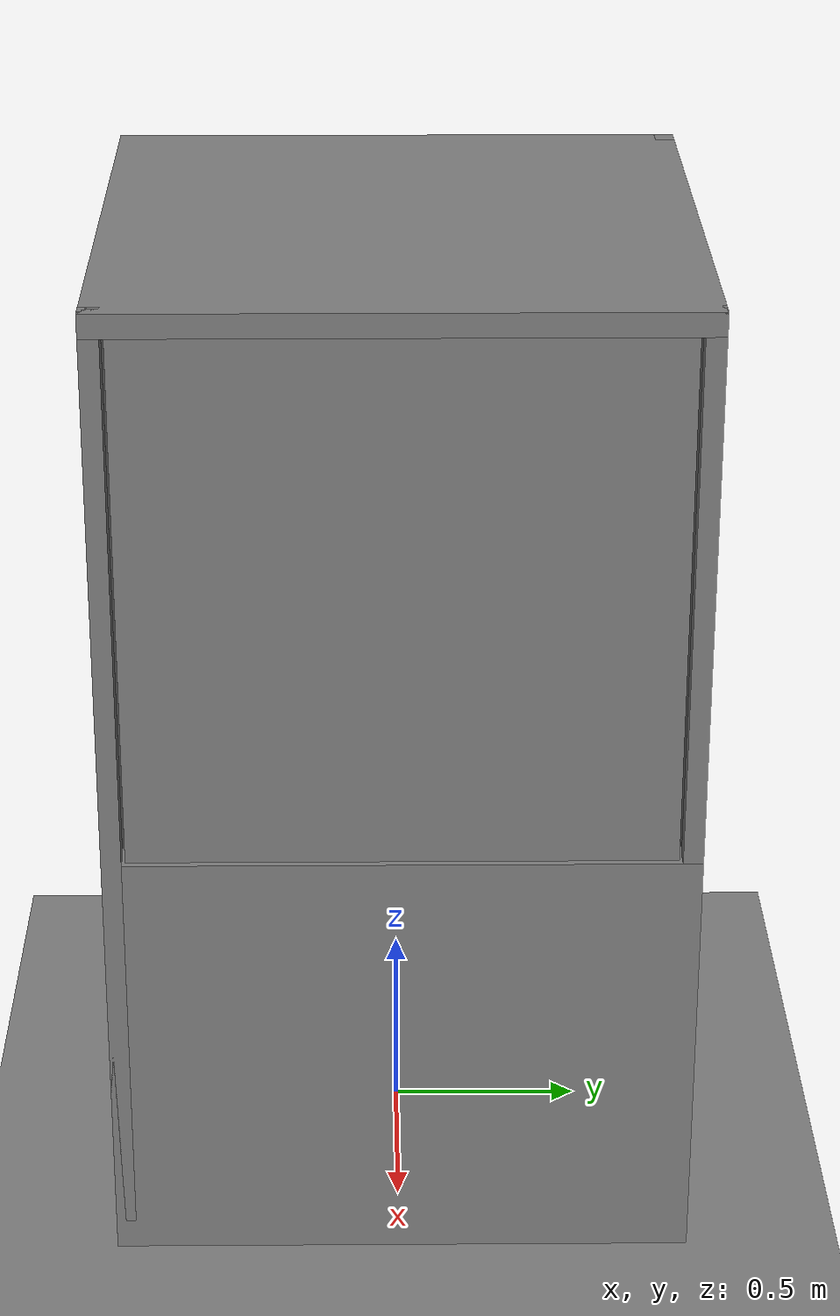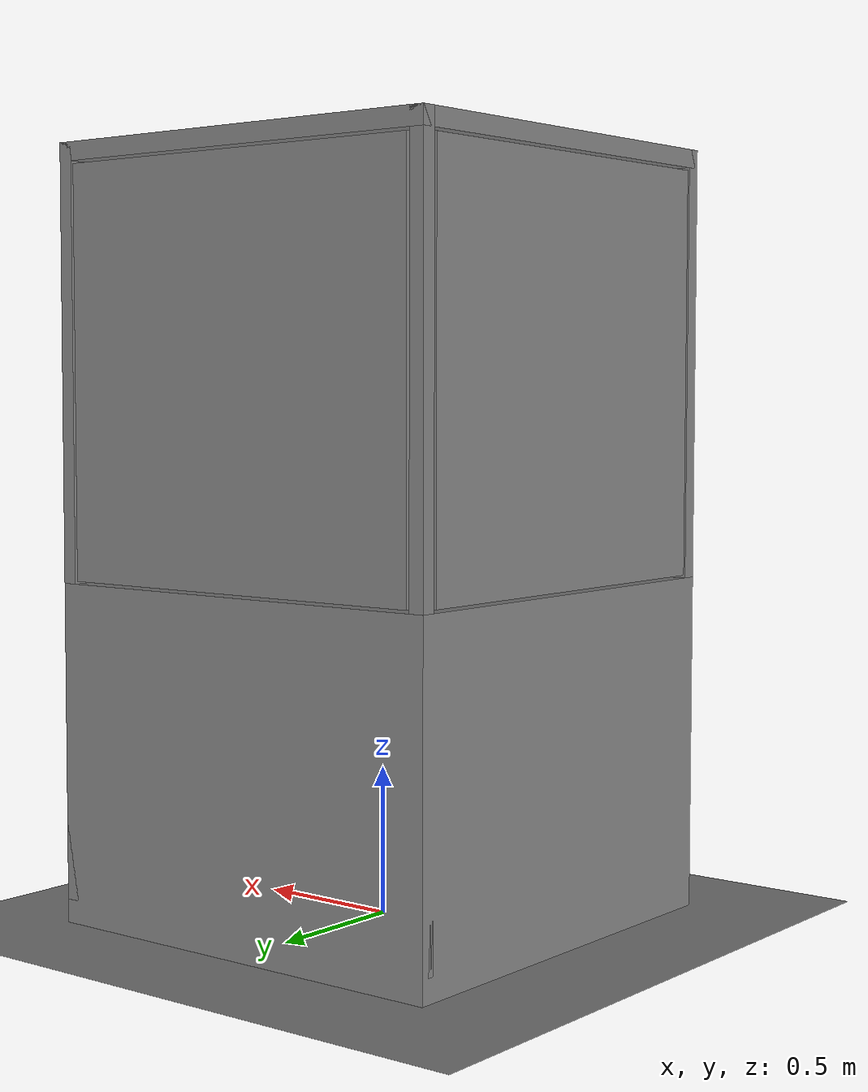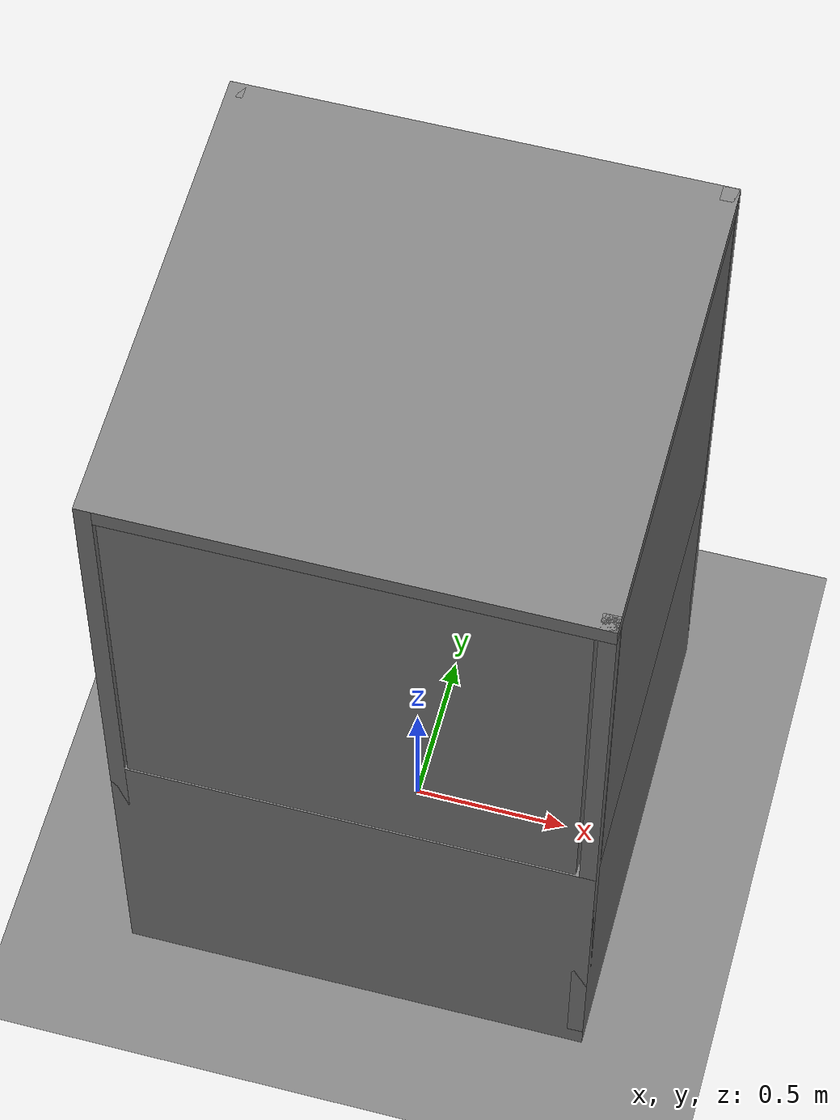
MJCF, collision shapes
<mujoco model="aic_world">
  <compiler angle="radian"/>

  <option gravity="0 0 -9.8" magnetic="5.5645e-06 2.28758e-05 -4.23884e-05"/>

  <visual>
    <headlight ambient="0 0 0" diffuse="0 0 0" specular="0 0 0"/>
  </visual>

  <default>
    <default class="world_default"/>
    <default class="cable_default">
      <joint damping="0.2"/>
    </default>
    <default class="sc_port_default">
      <geom friction="0.5 0.5"/>
    </default>
    <default class="nic_card_default">
      <geom friction="0.1 0.005 0.1"/>
    </default>
  </default>

  <extension>
    <plugin plugin="mujoco.elasticity.cable">
      <instance name="composite">
        <config key="twist" value="1e2"/>
        <config key="bend" value="4e1"/>
      </instance>
    </plugin>
  </extension>

  <asset>
    <texture type="2d" colorspace="linear" name="texture_8f0186e86ccda8a0971804b92cdad95564f7797822ed4e98eb905611a9653b33_floor_visual_Plane" file="8f0186e86ccda8a0971804b92cdad95564f7797822ed4e98eb905611a9653b33_floor_visual_b3a94635-54d6beff6424435d3828cb4c8a1278d9ea3964b0.png"/>
    <texture type="2d" colorspace="linear" name="texture_f6f0c5403646eaf005b17bf1932ba8f603568238a7d114e0e1bc4a4e145a50b8_sc_plug_visual_merged_0" file="f6f0c5403646eaf005b17bf1932ba8f603568238a7d114e0e1bc4a4e145a50b8_sc_plug_visual_5875f865-48f62b2f4840d852c7f39a01e6c183037dc1485b.png"/>
    <texture type="2d" colorspace="linear" name="texture_45081d4d6958c247f16088da85c40468642229c5d721531f9479bf28cde4b7ef_lc_plug_visual_merged_0" file="45081d4d6958c247f16088da85c40468642229c5d721531f9479bf28cde4b7ef_lc_plug_visual_03dabf32-0905e8a8aa368516e682f6ec84258100cdb4efef.png"/>
    <texture type="2d" colorspace="linear" name="texture_d4242c13bbd8250369ffe37581ab16c59b800de33e7811b05a80c210be9e8c9e_sfp_module_visual_Body.005" file="d4242c13bbd8250369ffe37581ab16c59b800de33e7811b05a80c210be9e8c9e_sfp_module_visual_8fc63b58-7471eafc55dcb668ae68adfe70a147b363ba3be9.png"/>
    <texture type="2d" colorspace="linear" name="texture_d4242c13bbd8250369ffe37581ab16c59b800de33e7811b05a80c210be9e8c9e_sfp_module_visual_Body.005_1" file="d4242c13bbd8250369ffe37581ab16c59b800de33e7811b05a80c210be9e8c9e_sfp_module_visual_1f09e86a-a4dc4a72bd6e778067310898a5c179607fd78966.png"/>
    <material name="material_d88de9d642ef2c0d3da51b0334e0062fd64c827416949a55eee77364fb471186_enclosure_visual_V1014952.001" class="world_default" shininess="30" rgba="0.290196 0.290196 0.290196 1"/>
    <material name="material_d88de9d642ef2c0d3da51b0334e0062fd64c827416949a55eee77364fb471186_enclosure_visual_V1014952.001_1" class="world_default" shininess="30" rgba="0.129412 0.129412 0.133333 1"/>
    <material name="material_d88de9d642ef2c0d3da51b0334e0062fd64c827416949a55eee77364fb471186_light_visual_Plane.001" class="world_default" shininess="30" rgba="0.5 0.5 0.5 1"/>
    <material name="material_8f0186e86ccda8a0971804b92cdad95564f7797822ed4e98eb905611a9653b33_floor_visual_Plane" class="world_default" texture="texture_8f0186e86ccda8a0971804b92cdad95564f7797822ed4e98eb905611a9653b33_floor_visual_Plane" shininess="30" rgba="0.5 0.5 0.5 1"/>
    <material name="material_8f0186e86ccda8a0971804b92cdad95564f7797822ed4e98eb905611a9653b33_walls_visual_Curve.001" class="world_default" shininess="30" rgba="0.0196078 0.0196078 0.0196078 1"/>
    <material name="material_8f0186e86ccda8a0971804b92cdad95564f7797822ed4e98eb905611a9653b33_walls_visual_merged_1" class="world_default" shininess="30" rgba="0.262745 0.262745 0.262745 1"/>
    <material name="material_8f0186e86ccda8a0971804b92cdad95564f7797822ed4e98eb905611a9653b33_walls_visual_Plane.003_1" class="world_default" shininess="30" rgba="0.8 0.8 0.8 1"/>
    <material name="material_8f0186e86ccda8a0971804b92cdad95564f7797822ed4e98eb905611a9653b33_walls_visual_Plane.002" class="world_default" shininess="30" rgba="0.207843 0.207843 0.207843 1"/>
    <material name="material_f6f0c5403646eaf005b17bf1932ba8f603568238a7d114e0e1bc4a4e145a50b8_sc_plug_visual_merged_0" class="world_default" texture="texture_f6f0c5403646eaf005b17bf1932ba8f603568238a7d114e0e1bc4a4e145a50b8_sc_plug_visual_merged_0" shininess="30" rgba="0.5 0.5 0.5 1"/>
    <material name="material_45081d4d6958c247f16088da85c40468642229c5d721531f9479bf28cde4b7ef_lc_plug_visual_merged_0" class="world_default" texture="texture_45081d4d6958c247f16088da85c40468642229c5d721531f9479bf28cde4b7ef_lc_plug_visual_merged_0" shininess="30" rgba="0.5 0.5 0.5 1"/>
    <material name="material_d4242c13bbd8250369ffe37581ab16c59b800de33e7811b05a80c210be9e8c9e_sfp_module_visual_Body.005" class="world_default" texture="texture_d4242c13bbd8250369ffe37581ab16c59b800de33e7811b05a80c210be9e8c9e_sfp_module_visual_Body.005" shininess="30" rgba="0.5 0.5 0.5 1"/>
    <material name="material_d4242c13bbd8250369ffe37581ab16c59b800de33e7811b05a80c210be9e8c9e_sfp_module_visual_Body.005_1" class="world_default" texture="texture_d4242c13bbd8250369ffe37581ab16c59b800de33e7811b05a80c210be9e8c9e_sfp_module_visual_Body.005_1" shininess="30" rgba="0.5 0.5 0.5 1"/>
    <material name="material_0cca7f1fa4560c20e609c8186c6b51b24aceac6bd62662694d26b474c9db0ba6_base_visual_ISO_4762_-_M3_x_8.019" class="world_default" shininess="30" rgba="0.0352941 0.0352941 0.0313726 1"/>
    <material name="material_0cca7f1fa4560c20e609c8186c6b51b24aceac6bd62662694d26b474c9db0ba6_base_visual_ISO_4762_-_M3_x_8.019_1" class="world_default" shininess="30" rgba="0.0313726 0.0313726 0.0313726 1"/>
    <material name="material_0cca7f1fa4560c20e609c8186c6b51b24aceac6bd62662694d26b474c9db0ba6_base_visual_ISO_4762_-_M3_x_8.019_2" class="world_default" shininess="30" rgba="0.215686 0 0.215686 1"/>
    <mesh name="d88de9d642ef2c0d3da51b0334e0062fd64c827416949a55eee77364fb471186_enclosure_visual_V1014952.001" class="world_default" content_type="model/obj" file="d88de9d642ef2c0d3da51b0334e0062fd64c827416949a55eee77364fb471186_enclosure_visual_V1014952.001-c990efe7b9dfe87aa065fd6eb3960ce051ae2aef.obj" inertia="shell"/>
    <mesh name="d88de9d642ef2c0d3da51b0334e0062fd64c827416949a55eee77364fb471186_enclosure_visual_V1014952.001_1" class="world_default" content_type="model/obj" file="d88de9d642ef2c0d3da51b0334e0062fd64c827416949a55eee77364fb471186_enclosure_visual_V1014952.001_1-807e07de06af157c84b994a232617507a7059420.obj" inertia="shell"/>
    <mesh name="d88de9d642ef2c0d3da51b0334e0062fd64c827416949a55eee77364fb471186_light_visual_Plane.001" class="world_default" content_type="model/obj" file="d88de9d642ef2c0d3da51b0334e0062fd64c827416949a55eee77364fb471186_light_visual_Plane.001-a8a774a80bc239d73769a498eae528b206eebcb0.obj" inertia="shell"/>
    <mesh name="8f0186e86ccda8a0971804b92cdad95564f7797822ed4e98eb905611a9653b33_floor_visual_Plane" class="world_default" content_type="model/obj" file="8f0186e86ccda8a0971804b92cdad95564f7797822ed4e98eb905611a9653b33_floor_visual_Plane-4dc7f6150ad7c239769a0860a01efb2015657aea.obj" inertia="shell"/>
    <mesh name="8f0186e86ccda8a0971804b92cdad95564f7797822ed4e98eb905611a9653b33_walls_visual_Curve.001" class="world_default" content_type="model/obj" file="8f0186e86ccda8a0971804b92cdad95564f7797822ed4e98eb905611a9653b33_walls_visual_Curve.001-4d7c79ac2e958832fdb15589262141ca1b80d3a5.obj" inertia="shell"/>
    <mesh name="8f0186e86ccda8a0971804b92cdad95564f7797822ed4e98eb905611a9653b33_walls_visual_merged_1" class="world_default" content_type="model/obj" file="8f0186e86ccda8a0971804b92cdad95564f7797822ed4e98eb905611a9653b33_walls_visual_merged_1-359a22140d528747936e80bedf90e1437a177a9f.obj" inertia="shell"/>
    <mesh name="8f0186e86ccda8a0971804b92cdad95564f7797822ed4e98eb905611a9653b33_walls_visual_Plane.003_1" class="world_default" content_type="model/obj" file="8f0186e86ccda8a0971804b92cdad95564f7797822ed4e98eb905611a9653b33_walls_visual_Plane.003_1-cd05ed21fa19a2784fb772d7519abf7c31c8b85f.obj" inertia="shell"/>
    <mesh name="8f0186e86ccda8a0971804b92cdad95564f7797822ed4e98eb905611a9653b33_walls_visual_Plane.002" class="world_default" content_type="model/obj" file="8f0186e86ccda8a0971804b92cdad95564f7797822ed4e98eb905611a9653b33_walls_visual_Plane.002-ee4f781765eec46c2256d941981732d4b1857f24.obj" inertia="shell"/>
    <mesh name="f6f0c5403646eaf005b17bf1932ba8f603568238a7d114e0e1bc4a4e145a50b8_sc_plug_visual_merged_0" class="world_default" content_type="model/obj" file="f6f0c5403646eaf005b17bf1932ba8f603568238a7d114e0e1bc4a4e145a50b8_sc_plug_visual_merged_0-67f94accf247f722dd4954d7448d7956402901f2.obj" inertia="shell"/>
    <mesh name="45081d4d6958c247f16088da85c40468642229c5d721531f9479bf28cde4b7ef_lc_plug_visual_merged_0" class="world_default" content_type="model/obj" file="45081d4d6958c247f16088da85c40468642229c5d721531f9479bf28cde4b7ef_lc_plug_visual_merged_0-fdaf59710fc3cc118a7df05add4ff4205edda4ef.obj" inertia="shell"/>
    <mesh name="d4242c13bbd8250369ffe37581ab16c59b800de33e7811b05a80c210be9e8c9e_sfp_module_visual_Body.005" class="world_default" content_type="model/obj" file="d4242c13bbd8250369ffe37581ab16c59b800de33e7811b05a80c210be9e8c9e_sfp_module_visual_Body.005-f93147e1e403de321fb70c06a4b1e00f20feb9fd.obj" inertia="shell"/>
    <mesh name="d4242c13bbd8250369ffe37581ab16c59b800de33e7811b05a80c210be9e8c9e_sfp_module_visual_Body.005_1" class="world_default" content_type="model/obj" file="d4242c13bbd8250369ffe37581ab16c59b800de33e7811b05a80c210be9e8c9e_sfp_module_visual_Body.005_1-4af964a95522e2593eb6381eca4f09ef239782c7.obj" inertia="shell"/>
    <mesh name="0cca7f1fa4560c20e609c8186c6b51b24aceac6bd62662694d26b474c9db0ba6_base_visual_ISO_4762_-_M3_x_8.019" class="world_default" content_type="model/obj" file="0cca7f1fa4560c20e609c8186c6b51b24aceac6bd62662694d26b474c9db0ba6_base_visual_ISO_4762_-_M3_x_8.019-f814bb518c42769543ab6246809f3fe4af5c2b64.obj" inertia="shell"/>
    <mesh name="0cca7f1fa4560c20e609c8186c6b51b24aceac6bd62662694d26b474c9db0ba6_base_visual_ISO_4762_-_M3_x_8.019_1" class="world_default" content_type="model/obj" file="0cca7f1fa4560c20e609c8186c6b51b24aceac6bd62662694d26b474c9db0ba6_base_visual_ISO_4762_-_M3_x_8.019_1-0b276ba9910a7642121235b62d2afc47c3995782.obj" inertia="shell"/>
    <mesh name="0cca7f1fa4560c20e609c8186c6b51b24aceac6bd62662694d26b474c9db0ba6_base_visual_ISO_4762_-_M3_x_8.019_2" class="world_default" content_type="model/obj" file="0cca7f1fa4560c20e609c8186c6b51b24aceac6bd62662694d26b474c9db0ba6_base_visual_ISO_4762_-_M3_x_8.019_2-7b96569be9572803417c5650ee83c9c883b44191.obj" inertia="shell"/>
    <!-- NIC Card Mount 0 assets -->
    <mesh name="nic_mount_visual_screw" file="0b8064b3d55c0a91b201a887d333757ce524ac7750c86fbe62130d9052f34958_nic_card_mount_visual_ISO_4762_-_M2_x_8.054-865f98896565b646973302f5cc3bb20e1474682a.obj" inertia="shell"/>
    <material name="mat_nic_mount_screw" specular="0.5" shininess="30" rgba="0.035 0.035 0.031 1"/>
    <mesh name="nic_mount_visual_screw_1" file="0b8064b3d55c0a91b201a887d333757ce524ac7750c86fbe62130d9052f34958_nic_card_mount_visual_ISO_4762_-_M2_x_8.054_1-5adcf23490bd5794ededbd17ac1064f40ca2f1d8.obj" inertia="shell"/>
    <material name="mat_nic_mount_screw_1" specular="0.5" shininess="30" rgba="0.031 0.031 0.031 1"/>
    <mesh name="nic_card_visual_0" file="0b8064b3d55c0a91b201a887d333757ce524ac7750c86fbe62130d9052f34958_nic_card_visual_merged_0-b45f6200bfaa68e87732b114c99af8b477e66413.obj" inertia="shell"/>
    <texture name="tex_nic_card_0" type="2d" file="0b8064b3d55c0a91b201a887d333757ce524ac7750c86fbe62130d9052f34958_nic_card_visual_45ced356-decb3c11fd49e8be2155fa2b1c64d354b4b1809a.png"/>
    <material name="mat_nic_card_0" texture="tex_nic_card_0" specular="0.5" shininess="30"/>
    <mesh name="nic_card_visual_1" file="0b8064b3d55c0a91b201a887d333757ce524ac7750c86fbe62130d9052f34958_nic_card_visual_merged_1-0e349b7b61b9f4e172feb5320f1e8146f966f938.obj" inertia="shell"/>
    <texture name="tex_nic_card_1" type="2d" file="0b8064b3d55c0a91b201a887d333757ce524ac7750c86fbe62130d9052f34958_nic_card_visual_39dce63a-b1ab28e3f7e42255c5bb13a337e50008ebdbcb02.png"/>
    <material name="mat_nic_card_1" texture="tex_nic_card_1" specular="0.5" shininess="30"/>
    <mesh name="nic_card_visual_pcb" file="0b8064b3d55c0a91b201a887d333757ce524ac7750c86fbe62130d9052f34958_nic_card_visual_Plane.029-3e628f059a97b4e803370a2b5e0abfcfac063972.obj" inertia="shell"/>
    <material name="mat_nic_card_pcb" specular="0.5" shininess="30" rgba="0.023 0.039 0.012 1"/>
    <mesh name="nic_card_visual_conn" file="0b8064b3d55c0a91b201a887d333757ce524ac7750c86fbe62130d9052f34958_nic_card_visual_Cube.007-f8fbe4a2582482ceb99cb3e87bdf6d5a3daf05ec.obj" inertia="shell"/>
    <material name="mat_nic_card_conn" specular="0.5" shininess="30" rgba="0 0 0 1"/>
  </asset>

  <worldbody>
    <light name="enclosure_light" class="world_default" pos="0 0 2.5" dir="0 0 -1" intensity="0.4" range="2" attenuation="1 0.01 0.001" cutoff="114.592" exponent="0.993023" diffuse="1 1 1" specular="0.1 0.1 0.1"/>
    <light name="ceiling_01" class="world_default" pos="2 2 6" dir="0 0 -1" intensity="2" range="9" castshadow="false" attenuation="1 0.01 0.001" cutoff="360" diffuse="1 1 1" specular="0.1 0.1 0.1"/>
    <light name="ceiling_02" class="world_default" pos="-2 -2 6" dir="0 0 -1" intensity="2" range="9" castshadow="false" attenuation="1 0.01 0.001" cutoff="360" diffuse="1 1 1" specular="0.1 0.1 0.1"/>
    <body name="enclosure_link">
      <inertial pos="0 0 0" mass="1" diaginertia="1 1 1"/>
      <geom name="v1015026001_collider_box" class="world_default" size="0.75 0.569492 0.75" pos="-0.010998 0.009283 0.569706" quat="1.22475e-07 -1.22474e-07 0.707107 0.707107" type="box" group="3"/>
      <geom name="v1015028001_collider_box" class="world_default" size="0.0254 0.0254 1.25" pos="0.713602 0.733883 1.3292" quat="1.73205e-07 0 0 -1" type="box" group="3"/>
      <geom name="v1015013001_collider_box" class="world_default" size="0.0304 0.75 0.75" pos="-0.010998 0.009283 2.5488" quat="0.707107 0 -0.707107 0" type="box" group="3"/>
      <geom name="v1015027_collider_box" class="world_default" size="0.0254 0.0254 1.25" pos="-0.735598 0.733883 1.3292" quat="1.73205e-07 0 0 -1" type="box" group="3"/>
      <geom name="v1015029_collider_box" class="world_default" size="0.0254 0.0254 1.25" pos="-0.735598 -0.715317 1.3292" quat="0 1.73205e-07 -1 -1.73205e-07" type="box" group="3"/>
      <geom name="v1015030_collider_box" class="world_default" size="0.0254 0.0254 1.25" pos="0.713602 -0.715317 1.3292" quat="1.73205e-07 0 0 -1" type="box" group="3"/>
      <geom name="enclosure_visual" class="world_default" type="mesh" contype="0" conaffinity="0" material="material_d88de9d642ef2c0d3da51b0334e0062fd64c827416949a55eee77364fb471186_enclosure_visual_V1014952.001" mesh="d88de9d642ef2c0d3da51b0334e0062fd64c827416949a55eee77364fb471186_enclosure_visual_V1014952.001"/>
      <geom name="enclosure_visual_0" class="world_default" type="mesh" contype="0" conaffinity="0" material="material_d88de9d642ef2c0d3da51b0334e0062fd64c827416949a55eee77364fb471186_enclosure_visual_V1014952.001_1" mesh="d88de9d642ef2c0d3da51b0334e0062fd64c827416949a55eee77364fb471186_enclosure_visual_V1014952.001_1"/>
      <geom name="light_visual" class="world_default" type="mesh" contype="0" conaffinity="0" material="material_d88de9d642ef2c0d3da51b0334e0062fd64c827416949a55eee77364fb471186_light_visual_Plane.001" mesh="d88de9d642ef2c0d3da51b0334e0062fd64c827416949a55eee77364fb471186_light_visual_Plane.001"/>
    </body>
    <body name="enclosure_walls_link">
      <inertial pos="0 0 0" mass="1" diaginertia="1 1 1"/>
      <geom name="v1015062006_collider_box" class="world_default" size="0.0250005 0.6796 0.6892" pos="-0.010998 0.734284 1.8288" quat="0.5 0.5 -0.5 -0.5" type="box" group="3"/>
      <geom name="v1015062005_collider_box" class="world_default" size="0.6892 0.6796 0.025" pos="-0.735998 0.009283 1.8288" quat="0.5 0.5 -0.5 -0.5" type="box" group="3"/>
      <geom name="v1015062007_collider_box" class="world_default" size="0.025 0.6846 0.6892" pos="-0.010998 -0.715717 1.8338" quat="0.5 0.5 -0.5 -0.5" type="box" group="3"/>
      <geom name="v1015062008_collider_box" class="world_default" size="0.6892 0.6846 0.025" pos="0.714002 0.009283 1.8338" quat="0.5 0.5 -0.5 -0.5" type="box" group="3"/>
    </body>
    <body name="floor_link">
      <inertial pos="0 0 0" mass="1" diaginertia="1 1 1"/>
      <geom name="floor_cylinder" class="world_default" size="5 5 1" type="plane" group="3"/>
      <geom name="floor_visual" class="world_default" type="mesh" contype="0" conaffinity="0" material="material_8f0186e86ccda8a0971804b92cdad95564f7797822ed4e98eb905611a9653b33_floor_visual_Plane" mesh="8f0186e86ccda8a0971804b92cdad95564f7797822ed4e98eb905611a9653b33_floor_visual_Plane"/>
      <geom name="walls_visual" class="world_default" type="mesh" contype="0" conaffinity="0" material="material_8f0186e86ccda8a0971804b92cdad95564f7797822ed4e98eb905611a9653b33_walls_visual_Curve.001" mesh="8f0186e86ccda8a0971804b92cdad95564f7797822ed4e98eb905611a9653b33_walls_visual_Curve.001"/>
      <geom name="walls_visual_0" class="world_default" type="mesh" contype="0" conaffinity="0" material="material_8f0186e86ccda8a0971804b92cdad95564f7797822ed4e98eb905611a9653b33_walls_visual_merged_1" mesh="8f0186e86ccda8a0971804b92cdad95564f7797822ed4e98eb905611a9653b33_walls_visual_merged_1"/>
      <geom name="walls_visual_1" class="world_default" type="mesh" contype="0" conaffinity="0" material="material_8f0186e86ccda8a0971804b92cdad95564f7797822ed4e98eb905611a9653b33_walls_visual_Plane.003_1" mesh="8f0186e86ccda8a0971804b92cdad95564f7797822ed4e98eb905611a9653b33_walls_visual_Plane.003_1"/>
      <geom name="walls_visual_2" class="world_default" type="mesh" contype="0" conaffinity="0" material="material_8f0186e86ccda8a0971804b92cdad95564f7797822ed4e98eb905611a9653b33_walls_visual_Plane.002" mesh="8f0186e86ccda8a0971804b92cdad95564f7797822ed4e98eb905611a9653b33_walls_visual_Plane.002"/>
    </body>
    <body name="cable_end_0" childclass="cable_default" pos="0.171400 0.020606 1.511889" quat="0.712741 0.312130 -0.052173 0.625982">
      <freejoint name="cable_end_0_free"/>
      <inertial pos="0 0 0" mass="0.0025" diaginertia="1e-6 1e-6 1e-6"/>
      <geom name="base_vis" class="world_default" size="0.002" contype="0" conaffinity="0"/>
      <plugin instance="composite"/>
      <body name="cable_connection_0" pos="1.18151e-07 1.39597e-07 -8.15657e-08" quat="0.715335 -0.362743 -0.296477 0.518473">
        <inertial pos="0 0 0" mass="0.01" diaginertia="1e-6 1e-6 1e-6"/>
        <joint name="joint_connection_end_0" class="world_default" pos="0 0 0" type="ball" damping="0.2"/>
        <geom name="visual_0_0" class="world_default" size="0.001 0.00180278" pos="-0.00180278 0.002 0" quat="0.676768 0.204909 0.676764 -0.204908" type="cylinder" contype="0" conaffinity="0"/>
        <geom name="visual_1_0" class="world_default" size="0.001 0.00180278" pos="-0.00180278 -0.002 0" quat="0.676768 -0.204909 0.676764 0.204908" type="cylinder" contype="0" conaffinity="0"/>
        <plugin instance="composite"/>
        <body name="link_1" pos="-0.0213314 -0.00859778 -0.00685949" quat="-0.432197 0.296772 0.744869 -0.412677">
          <inertial pos="0 0 0" mass="0.0025" diaginertia="1e-6 1e-6 1e-6"/>
          <joint name="joint_end_0" pos="0 0 -0.024" type="ball"/>
          <geom name="link_1_collision" size="0.002 0.018" pos="0 0 0.006" type="cylinder" group="3"/>
          <geom name="sphere_1_collision" size="0.002" pos="0 0 0.024" group="3"/>
          <geom name="link_1_vis" size="0.002 0.024" type="cylinder" contype="0" conaffinity="0"/>
          <geom name="sphere_1_vis" size="0.002" pos="0 0 0.024" contype="0" conaffinity="0"/>
          <plugin instance="composite"/>
          <body name="link_2" pos="-0.0108746 0.0204122 0.0304094" quat="0.776562 -0.458843 -0.394892 -0.174568">
            <inertial pos="0 0 0" mass="0.0025" diaginertia="1e-6 1e-6 1e-6"/>
            <joint name="joint_1" pos="0 0 -0.024" type="ball"/>
            <geom name="link_2_collision" size="0.002 0.024" type="cylinder" group="3"/>
            <geom name="sphere_2_collision" size="0.002" pos="0 0 0.024" group="3"/>
            <geom name="link_2_vis" size="0.002 0.024" type="cylinder" contype="0" conaffinity="0"/>
            <geom name="sphere_2_vis" size="0.002" pos="0 0 0.024" contype="0" conaffinity="0"/>
            <plugin instance="composite"/>
            <body name="link_3" pos="-0.00380403 0.00452978 0.0472598" quat="0.980576 -0.10621 -0.0643881 0.151801">
              <inertial pos="0 0 0" mass="0.0025" diaginertia="1e-6 1e-6 1e-6"/>
              <joint name="joint_2" pos="0 0 -0.024" type="ball"/>
              <geom name="link_3_collision" size="0.002 0.024" type="cylinder" group="3"/>
              <geom name="sphere_3_collision" size="0.002" pos="0 0 0.024" group="3"/>
              <geom name="link_3_vis" size="0.002 0.024" type="cylinder" contype="0" conaffinity="0"/>
              <geom name="sphere_3_vis" size="0.002" pos="0 0 0.024" contype="0" conaffinity="0"/>
              <plugin instance="composite"/>
              <body name="link_4" pos="-0.00135867 -0.000209098 0.0479608" quat="0.982923 -0.000863281 -0.0286412 0.181774">
                <inertial pos="0 0 0" mass="0.0025" diaginertia="1e-6 1e-6 1e-6"/>
                <joint name="joint_3" pos="0 0 -0.024" type="ball"/>
                <geom name="link_4_collision" size="0.002 0.024" type="cylinder" group="3"/>
                <geom name="sphere_4_collision" size="0.002" pos="0 0 0.024" group="3"/>
                <geom name="link_4_vis" size="0.002 0.024" type="cylinder" contype="0" conaffinity="0"/>
                <geom name="sphere_4_vis" size="0.002" pos="0 0 0.024" contype="0" conaffinity="0"/>
                <plugin instance="composite"/>
                <body name="link_5" pos="-0.000942222 -0.000595761 0.0479746" quat="0.980554 0.00835069 -0.0216735 0.194871">
                  <inertial pos="0 0 0" mass="0.0025" diaginertia="1e-6 1e-6 1e-6"/>
                  <joint name="joint_4" pos="0 0 -0.024" type="ball"/>
                  <geom name="link_5_collision" size="0.002 0.024" type="cylinder" group="3"/>
                  <geom name="sphere_5_collision" size="0.002" pos="0 0 0.024" group="3"/>
                  <geom name="link_5_vis" size="0.002 0.024" type="cylinder" contype="0" conaffinity="0"/>
                  <geom name="sphere_5_vis" size="0.002" pos="0 0 0.024" contype="0" conaffinity="0"/>
                  <plugin instance="composite"/>
                  <body name="link_6" pos="-0.000319799 -0.00052844 0.0479924" quat="0.985117 0.00970569 -0.00847185 0.171399">
                    <inertial pos="0 0 0" mass="0.0025" diaginertia="1e-6 1e-6 1e-6"/>
                    <joint name="joint_5" pos="0 0 -0.024" type="ball"/>
                    <geom name="link_6_collision" size="0.002 0.024" type="cylinder" group="3"/>
                    <geom name="sphere_6_collision" size="0.002" pos="0 0 0.024" group="3"/>
                    <geom name="link_6_vis" size="0.002 0.024" type="cylinder" contype="0" conaffinity="0"/>
                    <geom name="sphere_6_vis" size="0.002" pos="0 0 0.024" contype="0" conaffinity="0"/>
                    <plugin instance="composite"/>
                    <body name="link_7" pos="0.000197516 -0.00153001 0.0479509" quat="0.993937 0.032145 0.000737917 0.105144">
                      <inertial pos="0 0 0" mass="0.0025" diaginertia="1e-6 1e-6 1e-6"/>
                      <joint name="joint_6" pos="0 0 -0.024" type="ball"/>
                      <geom name="link_7_collision" size="0.002 0.024" type="cylinder" group="3"/>
                      <geom name="sphere_7_collision" size="0.002" pos="0 0 0.024" group="3"/>
                      <geom name="link_7_vis" size="0.002 0.024" type="cylinder" contype="0" conaffinity="0"/>
                      <geom name="sphere_7_vis" size="0.002" pos="0 0 0.024" contype="0" conaffinity="0"/>
                      <plugin instance="composite"/>
                      <body name="link_8" pos="0.000283315 -0.00308161 0.0478004" quat="0.9979 0.064297 0.00621355 -0.00469115">
                        <inertial pos="0 0 0" mass="0.0025" diaginertia="1e-6 1e-6 1e-6"/>
                        <joint name="joint_7" pos="0 0 -0.024" type="ball"/>
                        <geom name="link_8_collision" size="0.002 0.024" type="cylinder" group="3"/>
                        <geom name="sphere_8_collision" size="0.002" pos="0 0 0.024" group="3"/>
                        <geom name="link_8_vis" size="0.002 0.024" type="cylinder" contype="0" conaffinity="0"/>
                        <geom name="sphere_8_vis" size="0.002" pos="0 0 0.024" contype="0" conaffinity="0"/>
                        <plugin instance="composite"/>
                        <body name="link_9" pos="0.000199877 -0.00404583 0.047657" quat="0.990147 0.0835882 0.0136178 -0.111517">
                          <inertial pos="0 0 0" mass="0.0025" diaginertia="1e-6 1e-6 1e-6"/>
                          <joint name="joint_8" pos="0 0 -0.024" type="ball"/>
                          <geom name="link_9_collision" size="0.002 0.024" type="cylinder" group="3"/>
                          <geom name="sphere_9_collision" size="0.002" pos="0 0 0.024" group="3"/>
                          <geom name="link_9_vis" size="0.002 0.024" type="cylinder" contype="0" conaffinity="0"/>
                          <geom name="sphere_9_vis" size="0.002" pos="0 0 0.024" contype="0" conaffinity="0"/>
                          <plugin instance="composite"/>
                          <body name="link_10" pos="0.000228551 -0.00430452 0.0476098" quat="0.98019 0.0877943 0.0206423 -0.176334">
                            <inertial pos="0 0 0" mass="0.0025" diaginertia="1e-6 1e-6 1e-6"/>
                            <joint name="joint_9" pos="0 0 -0.024" type="ball"/>
                            <geom name="link_10_collision" size="0.002 0.024" type="cylinder" group="3"/>
                            <geom name="sphere_10_collision" size="0.002" pos="0 0 0.024" group="3"/>
                            <geom name="link_10_vis" size="0.002 0.024" type="cylinder" contype="0" conaffinity="0"/>
                            <geom name="sphere_10_vis" size="0.002" pos="0 0 0.024" contype="0" conaffinity="0"/>
                            <plugin instance="composite"/>
                            <body name="link_11" pos="-8.12958e-05 -0.00390192 0.0476816" quat="0.968683 0.0796729 0.0175301 -0.234517">
                              <inertial pos="0 0 0" mass="0.0025" diaginertia="1e-6 1e-6 1e-6"/>
                              <joint name="joint_10" pos="0 0 -0.024" type="ball"/>
                              <geom name="link_11_collision" size="0.002 0.024" type="cylinder" group="3"/>
                              <geom name="sphere_11_collision" size="0.002" pos="0 0 0.024" group="3"/>
                              <geom name="link_11_vis" size="0.002 0.024" type="cylinder" contype="0" conaffinity="0"/>
                              <geom name="sphere_11_vis" size="0.002" pos="0 0 0.024" contype="0" conaffinity="0"/>
                              <plugin instance="composite"/>
                              <body name="link_12" pos="-0.000543374 -0.00318241 0.0477834" quat="0.962931 0.067106 0.0064419 -0.261188">
                                <inertial pos="0 0 0" mass="0.0025" diaginertia="1e-6 1e-6 1e-6"/>
                                <joint name="joint_11" pos="0 0 -0.024" type="ball"/>
                                <geom name="link_12_collision" size="0.002 0.024" type="cylinder" group="3"/>
                                <geom name="sphere_12_collision" size="0.002" pos="0 0 0.024" group="3"/>
                                <geom name="link_12_vis" size="0.002 0.024" type="cylinder" contype="0" conaffinity="0"/>
                                <geom name="sphere_12_vis" size="0.002" pos="0 0 0.024" contype="0" conaffinity="0"/>
                                <plugin instance="composite"/>
                                <body name="link_13" pos="-0.0018971 -0.00239757 0.0478049" quat="0.960773 0.0589083 -0.0246085 -0.269887">
                                  <inertial pos="0 0 0" mass="0.0025" diaginertia="1e-6 1e-6 1e-6"/>
                                  <joint name="joint_12" pos="0 0 -0.024" type="ball"/>
                                  <geom name="link_13_collision" size="0.002 0.024" type="cylinder" group="3"/>
                                  <geom name="sphere_13_collision" size="0.002" pos="0 0 0.024" group="3"/>
                                  <geom name="link_13_vis" size="0.002 0.024" type="cylinder" contype="0" conaffinity="0"/>
                                  <geom name="sphere_13_vis" size="0.002" pos="0 0 0.024" contype="0" conaffinity="0"/>
                                  <plugin instance="composite"/>
                                  <body name="link_14" pos="-0.00656064 -0.00388102 0.0467578" quat="0.942583 0.119302 -0.10797 -0.292655">
                                    <inertial pos="0 0 0" mass="0.0025" diaginertia="1e-6 1e-6 1e-6"/>
                                    <joint name="joint_13" pos="0 0 -0.024" type="ball"/>
                                    <geom name="link_14_collision" size="0.002 0.024" type="cylinder" group="3"/>
                                    <geom name="sphere_14_collision" size="0.002" pos="0 0 0.024" group="3"/>
                                    <geom name="link_14_vis" size="0.002 0.024" type="cylinder" contype="0" conaffinity="0"/>
                                    <geom name="sphere_14_vis" size="0.002" pos="0 0 0.024" contype="0" conaffinity="0"/>
                                    <plugin instance="composite"/>
                                    <body name="link_15" pos="-0.0109662 -0.00809428 0.0437537" quat="0.898741 0.247028 -0.165673 -0.322172">
                                      <inertial pos="0 0 0" mass="0.0025" diaginertia="1e-6 1e-6 1e-6"/>
                                      <joint name="joint_14" pos="0 0 -0.024" type="ball"/>
                                      <geom name="link_15_collision" size="0.002 0.024" type="cylinder" group="3"/>
                                      <geom name="sphere_15_collision" size="0.002" pos="0 0 0.024" group="3"/>
                                      <geom name="link_15_vis" size="0.002 0.024" type="cylinder" contype="0" conaffinity="0"/>
                                      <geom name="sphere_15_vis" size="0.002" pos="0 0 0.024" contype="0" conaffinity="0"/>
                                      <plugin instance="composite"/>
                                      <body name="link_16" pos="-0.00838813 -0.0108934 0.0436736" quat="0.920004 0.277844 -0.113898 -0.251837">
                                        <inertial pos="0 0 0" mass="0.0025" diaginertia="1e-6 1e-6 1e-6"/>
                                        <joint name="joint_15" pos="0 0 -0.024" type="ball"/>
                                        <geom name="link_16_collision" size="0.002 0.024" type="cylinder" group="3"/>
                                        <geom name="sphere_16_collision" size="0.002" pos="0 0 0.024" group="3"/>
                                        <geom name="link_16_vis" size="0.002 0.024" type="cylinder" contype="0" conaffinity="0"/>
                                        <geom name="sphere_16_vis" size="0.002" pos="0 0 0.024" contype="0" conaffinity="0"/>
                                        <plugin instance="composite"/>
                                        <body name="link_17" pos="-0.00122728 -0.0121079 0.0446861" quat="0.959871 0.262794 0.000146963 -0.0979096">
                                          <inertial pos="0 0 0" mass="0.0025" diaginertia="1e-6 1e-6 1e-6"/>
                                          <joint name="joint_16" pos="0 0 -0.024" type="ball"/>
                                          <geom name="link_17_collision" size="0.002 0.024" type="cylinder" group="3"/>
                                          <geom name="sphere_17_collision" size="0.002" pos="0 0 0.024" group="3"/>
                                          <geom name="link_17_vis" size="0.002 0.024" type="cylinder" contype="0" conaffinity="0"/>
                                          <geom name="sphere_17_vis" size="0.002" pos="0 0 0.024" contype="0" conaffinity="0"/>
                                          <plugin instance="composite"/>
                                          <body name="link_18" pos="0.00324443 -0.0100987 0.0455283" quat="0.973829 0.216939 0.066586 0.0127173">
                                            <inertial pos="0 0 0" mass="0.0025" diaginertia="1e-6 1e-6 1e-6"/>
                                            <joint name="joint_17" pos="0 0 -0.024" type="ball"/>
                                            <geom name="link_18_collision" size="0.002 0.024" type="cylinder" group="3"/>
                                            <geom name="sphere_18_collision" size="0.002" pos="0 0 0.024" group="3"/>
                                            <geom name="link_18_vis" size="0.002 0.024" type="cylinder" contype="0" conaffinity="0"/>
                                            <geom name="sphere_18_vis" size="0.002" pos="0 0 0.024" contype="0" conaffinity="0"/>
                                            <plugin instance="composite"/>
                                            <body name="link_19" pos="0.00582253 -0.00673519 0.0462891" quat="0.977504 0.154024 0.109299 0.0938916">
                                              <inertial pos="0 0 0" mass="0.0025" diaginertia="1e-6 1e-6 1e-6"/>
                                              <joint name="joint_18" pos="0 0 -0.024" type="ball"/>
                                              <geom name="link_19_collision" size="0.002 0.024" type="cylinder" group="3"/>
                                              <geom name="sphere_19_collision" size="0.002" pos="0 0 0.024" group="3"/>
                                              <geom name="link_19_vis" size="0.002 0.024" type="cylinder" contype="0" conaffinity="0"/>
                                              <geom name="sphere_19_vis" size="0.002" pos="0 0 0.024" contype="0" conaffinity="0"/>
                                              <plugin instance="composite"/>
                                              <body name="link_20" pos="-0.00951962 0.0134391 0.0414594" quat="0.86795 -0.357637 -0.0916284 0.33221">
                                                <inertial pos="0 0 0" mass="0.0025" diaginertia="1e-6 1e-6 1e-6"/>
                                                <joint name="joint_19" pos="0 0 -0.024" type="ball"/>
                                                <geom name="link_20_collision" size="0.002 0.024" type="cylinder" group="3"/>
                                                <geom name="sphere_20_collision" size="0.002" pos="0 0 0.024" group="3"/>
                                                <geom name="link_20_vis" size="0.002 0.024" type="cylinder" contype="0" conaffinity="0"/>
                                                <geom name="sphere_20_vis" size="0.002" pos="0 0 0.024" contype="0" conaffinity="0"/>
                                                <plugin instance="composite"/>
                                                <body name="cable_connection_1" pos="1.02722e-06 -3.33632e-07 0.024" quat="0.665066 -0.480296 -0.272648 0.502659">
                                                  <inertial pos="0 0 0" mass="0.01" diaginertia="1e-6 1e-6 1e-6"/>
                                                  <joint name="joint_connection_end_1" class="world_default" pos="0 0 0" type="ball"/>
                                                  <geom name="collision_0" class="world_default" size="0.001 0.00367636" pos="0.00367636 -0.00425 0" quat="0.673802 0.214463 0.673798 -0.214461" type="cylinder" group="3"/>
                                                  <geom name="collision_1" class="world_default" size="0.001 0.00367636" pos="0.00367636 0.00425 0" quat="0.673802 -0.214463 0.673798 0.214461" type="cylinder" group="3"/>
                                                  <geom name="visual_0" class="world_default" size="0.001 0.00367636" pos="0.00367636 -0.00425 0" quat="0.673802 0.214463 0.673798 -0.214461" type="cylinder" contype="0" conaffinity="0"/>
                                                  <geom name="visual_1" class="world_default" size="0.001 0.00367636" pos="0.00367636 0.00425 0" quat="0.673802 -0.214463 0.673798 0.214461" type="cylinder" contype="0" conaffinity="0"/>
                                                  <plugin instance="composite"/>
                                                  <body name="sc_plug_link" pos="0.0519999 -7.80486e-08 1.03208e-07" quat="1 6.31273e-08 5.12375e-09 1.22104e-07">
                                                    <inertial pos="-0.00907511 4.9566e-05 8.71699e-06" quat="0.000872542 0.70691 -0.000868656 0.707302" mass="0.04" diaginertia="8.85404e-06 7.17322e-06 2.12253e-06"/>
                                                    <geom name="housing blue_predeterminado005_collider_box" class="world_default" size="0.0063605 0.0045 0.00365" pos="0.002038 0.006344 4e-06" type="box" group="3"/>
                                                    <geom name="housing blue_predeterminado005_collider_box.001" class="world_default" size="0.0063605 0.0045 0.00365" pos="0.002038 -0.006344 4e-06" type="box" group="3"/>
                                                    <geom name="housing blue_predeterminado005_collider_box.002" class="world_default" size="0.006861 0.0035 0.00365" pos="0.002539 0.006344 4e-06" type="box" group="3"/>
                                                    <geom name="housing blue_predeterminado005_collider_box.003" class="world_default" size="0.006861 0.0035 0.00365" pos="0.002539 -0.006344 4e-06" type="box" group="3"/>
                                                    <geom name="housing blue_predeterminado005_collider_box.004" class="world_default" size="0.001 0.000705 0.00365" pos="0.008191 0.003056 4e-06" quat="0.92388 0 0 -0.382683" type="box" group="3"/>
                                                    <geom name="housing blue_predeterminado005_collider_box.005" class="world_default" size="0.001 0.000705 0.00365" pos="0.008191 0.009636 4e-06" quat="0.92388 0 0 0.382683" type="box" group="3"/>
                                                    <geom name="housing blue_predeterminado005_collider_box.006" class="world_default" size="0.001 0.000705 0.00365" pos="0.008191 -0.009636 4e-06" quat="0.92388 0 0 -0.382683" type="box" group="3"/>
                                                    <geom name="housing blue_predeterminado005_collider_box.007" class="world_default" size="0.001 0.000705 0.00365" pos="0.008191 -0.003056 4e-06" quat="0.92388 0 0 0.382683" type="box" group="3"/>
                                                    <geom name="cube002_collider_box" class="world_default" size="0.006275 0.0125 0.00505" pos="-0.010291 0 0" type="box" group="3"/>
                                                    <geom name="cylinder011_collider_cylinder" class="world_default" size="0.0029 0.014605" pos="-0.031147 -0.00635 0" quat="0.707107 0 0.707107 0" type="cylinder" group="3"/>
                                                    <geom name="cylinder005_collider_cylinder" class="world_default" size="0.0029 0.015799" pos="-0.029953 0.00635 0" quat="0.707107 0 0.707107 0" type="cylinder" group="3"/>
                                                    <geom name="ferula_predeterminado005_collider_cylinder" class="world_default" size="0.00125 0.007" pos="0.00465 -0.00635 0" quat="0.707107 0 0.707107 0" type="cylinder" group="3"/>
                                                    <geom name="ferula_predeterminado003_collider_cylinder" class="world_default" size="0.00125 0.007" pos="0.00465 0.00635 0" quat="0.707107 0 0.707107 0" type="cylinder" group="3"/>
                                                    <geom name="side_box_collision" class="world_default" size="0.002125 0.00081 0.0005" pos="0.00146 -0.00632 0.0042" type="box" group="3"/>
                                                    <geom name="side_box_collision_2" class="world_default" size="0.002125 0.00081 0.0005" pos="0.00146 0.00632 0.0042" type="box" group="3"/>
                                                    <geom name="sc_plug_visual" class="world_default" type="mesh" contype="0" conaffinity="0" material="material_f6f0c5403646eaf005b17bf1932ba8f603568238a7d114e0e1bc4a4e145a50b8_sc_plug_visual_merged_0" mesh="f6f0c5403646eaf005b17bf1932ba8f603568238a7d114e0e1bc4a4e145a50b8_sc_plug_visual_merged_0"/>
                                                    <body name="sc_tip_link" pos="0.0116504 -8.9947e-08 -9.73092e-08" quat="0.499998 -0.5 0.500002 -0.5">
                                                      <inertial pos="0 0 0" mass="0.001" diaginertia="1e-06 1e-06 1e-06"/>
                                                    </body>
                                                  </body>
                                                </body>
                                              </body>
                                            </body>
                                          </body>
                                        </body>
                                      </body>
                                    </body>
                                  </body>
                                </body>
                              </body>
                            </body>
                          </body>
                        </body>
                      </body>
                    </body>
                  </body>
                </body>
              </body>
            </body>
          </body>
        </body>
        <body name="lc_plug_link" pos="-0.041 5.19586e-08 -3.75385e-09" quat="0.707109 6.83373e-08 5.35154e-08 0.707104">
          <inertial pos="0 0.0197 0" quat="0 0.707107 0 0.707107" mass="0.01" diaginertia="1.06153e-07 9.96094e-08 8.49658e-09"/>
          <geom name="cylinder001_collider_cylinder.001" class="world_default" size="0.000625 0.001502" pos="0.003125 0.0197 0" quat="0.707107 0.707107 0 0" type="cylinder" group="3"/>
          <geom name="cylinder_collider_cylinder.001" class="world_default" size="0.000625 0.001502" pos="-0.003125 0.0197 0" quat="0.707107 0.707107 0 0" type="cylinder" group="3"/>
          <geom name="lc_plug_visual" class="world_default" type="mesh" contype="0" conaffinity="0" material="material_45081d4d6958c247f16088da85c40468642229c5d721531f9479bf28cde4b7ef_lc_plug_visual_merged_0" mesh="45081d4d6958c247f16088da85c40468642229c5d721531f9479bf28cde4b7ef_lc_plug_visual_merged_0"/>
          <body name="sfp_module_link" pos="9.71036e-08 0.0384001 -1.58649e-08" quat="1.26888e-07 1 -1.18954e-06 -1.40361e-06">
            <inertial pos="0.00024115 0.00702224 0.000553372" quat="0.510037 0.497012 -0.483415 0.50907" mass="0.02" diaginertia="3.07513e-06 2.81054e-06 5.69919e-07"/>
            <geom name="port_collider_box.008" class="world_default" size="0.00071 0.000503 0.0064415" pos="-0.00571 0.018813 -0.003546" quat="0.707107 0.707107 0 0" type="box" group="3"/>
            <geom name="port_collider_box.009" class="world_default" size="0.00071 0.000503 0.0064415" pos="0.00571 0.018813 -0.003546" quat="0.707107 0.707107 0 0" type="box" group="3"/>
            <geom name="body_collider_box" class="world_default" size="0.006875 0.02365 0.0003945" pos="0 0.001 0.00383" type="box" group="3"/>
            <geom name="body_collider_box.001" class="world_default" size="0.006875 0.02365 8.9e-05" pos="0 0.001 -0.004138" type="box" group="3"/>
            <geom name="body_collider_box.002" class="world_default" size="0.000287 0.02365 0.004225" pos="-0.006588 0.001 0" type="box" group="3"/>
            <geom name="body_collider_box.003" class="world_default" size="0.0004055 0.02365 0.004225" pos="0.00647 0.001 0" type="box" group="3"/>
            <geom name="port_collider_box.010" class="world_default" size="0.00642 0.0038815 0.0058645" pos="0 0.01229 0.000119" quat="0.707107 0.707107 0 0" type="box" group="3"/>
            <geom name="port_collider_box002_collider_box" class="world_default" size="0.00642 0.0002045 0.0008005" pos="0 0.024453 -0.004254" quat="0.707107 0.707107 0 0" type="box" group="3"/>
            <geom name="port_collider_box.011" class="world_default" size="0.00125 0.000503 0.0064415" pos="0 0.018813 -0.003546" quat="0.707107 0.707107 0 0" type="box" group="3"/>
            <geom name="sfp_module_visual" class="world_default" type="mesh" contype="0" conaffinity="0" material="material_d4242c13bbd8250369ffe37581ab16c59b800de33e7811b05a80c210be9e8c9e_sfp_module_visual_Body.005" mesh="d4242c13bbd8250369ffe37581ab16c59b800de33e7811b05a80c210be9e8c9e_sfp_module_visual_Body.005"/>
            <geom name="sfp_module_visual_0" class="world_default" type="mesh" contype="0" conaffinity="0" material="material_d4242c13bbd8250369ffe37581ab16c59b800de33e7811b05a80c210be9e8c9e_sfp_module_visual_Body.005_1" mesh="d4242c13bbd8250369ffe37581ab16c59b800de33e7811b05a80c210be9e8c9e_sfp_module_visual_Body.005_1"/>
            <body name="sfp_tip_link" pos="-1.16737e-07 -0.02365 -1.09882e-08" quat="0.707105 0.707108 -2.11546e-08 -1.63269e-07">
              <inertial pos="0 0 0" mass="0.001" diaginertia="1e-06 1e-06 1e-06"/>
              <geom name="contact_collision" class="world_default" size="0.006875 0.0021125 0.0005" pos="0 0.0021125 -0.0005" type="box" group="3"/>
              <geom name="non_contact_collision" class="world_default" size="0.006875 0.0021125 0.0005" pos="0 -0.0021125 -0.0005" type="box" group="3"/>
            </body>
          </body>
        </body>
      </body>
    </body>
    <body name="task_board_base_link" pos="0.15 -0.2 1.14" quat="4.63268e-05 0 0 1">
      <inertial pos="0 0 0" mass="5" diaginertia="0.1 0.1 0.1"/>
      <geom name="task_board_base_link_fixed_joint_lump__v1015083001_collider_box_left_collision" class="world_default" size="0.15 0.114 0.0045" pos="0 -0.1 0.0075" type="box" group="3"/>
      <geom name="task_board_base_link_fixed_joint_lump__v1015083001_collider_right_collision_1" class="world_default" size="0.15 0.0635 0.0045" pos="0 0.149 0.0075" type="box" group="3"/>
      <geom name="task_board_base_link_fixed_joint_lump__v1015083001_collider_mid_collision_2" class="world_default" size="0.07 0.006 0.0045" pos="-0.075 0.05 0.0075" type="box" group="3"/>
      <geom name="task_board_base_link_fixed_joint_lump__v1015083001_collider_bottom_collision_3" class="world_default" size="0.0825 0.2125 0.0045" pos="0.068 0 0.0075" type="box" group="3"/>
      <geom name="task_board_base_link_fixed_joint_lump__v1015083001_collider_top_collision_4" class="world_default" size="0.0075 0.2125 0.0045" pos="-0.143 0 0.0075" type="box" group="3"/>
      <geom name="task_board_base_link_fixed_joint_lump__base_visual_visual" class="world_default" type="mesh" contype="0" conaffinity="0" material="material_0cca7f1fa4560c20e609c8186c6b51b24aceac6bd62662694d26b474c9db0ba6_base_visual_ISO_4762_-_M3_x_8.019" mesh="0cca7f1fa4560c20e609c8186c6b51b24aceac6bd62662694d26b474c9db0ba6_base_visual_ISO_4762_-_M3_x_8.019"/>
      <geom name="task_board_base_link_fixed_joint_lump__base_visual_visual_0" class="world_default" type="mesh" contype="0" conaffinity="0" material="material_0cca7f1fa4560c20e609c8186c6b51b24aceac6bd62662694d26b474c9db0ba6_base_visual_ISO_4762_-_M3_x_8.019_1" mesh="0cca7f1fa4560c20e609c8186c6b51b24aceac6bd62662694d26b474c9db0ba6_base_visual_ISO_4762_-_M3_x_8.019_1"/>
      <geom name="task_board_base_link_fixed_joint_lump__base_visual_visual_1" class="world_default" type="mesh" contype="0" conaffinity="0" material="material_0cca7f1fa4560c20e609c8186c6b51b24aceac6bd62662694d26b474c9db0ba6_base_visual_ISO_4762_-_M3_x_8.019_2" mesh="0cca7f1fa4560c20e609c8186c6b51b24aceac6bd62662694d26b474c9db0ba6_base_visual_ISO_4762_-_M3_x_8.019_2"/>
    </body>
    <body name="static_link">
      <inertial pos="0 0 0" mass="1" diaginertia="1 1 1"/>
    </body>
    <body name="static_link_0">
      <inertial pos="0 0 0" mass="1" diaginertia="1 1 1"/>
    </body>
    <!-- NIC Card Mount 0: world pos computed from task_board pose + config offset, yaw=pi -->
    <body name="nic_card_mount_link" pos="0.195418 -0.025500 1.152000" quat="0 0 0 1">
      <inertial pos="0 0 0" mass="1" diaginertia="0.1 0.1 0.1"/>
      <geom name="v1015085006_collider_box" class="world_default" type="box" group="3" size="0.002504 0.036998 0.077500" friction="1 0.005 0.0001" pos="0.006002 -0.025497 0.087500" euler="0 0 1.5708"/>
      <geom name="v1015085006_collider_box_001" class="world_default" type="box" group="3" size="0.012500 0.010750 0.007000" friction="1 0.005 0.0001" pos="-0.055500 -0.015500 0.172000" euler="0 0 1.5708"/>
      <geom name="v1015085006_collider_box_002" class="world_default" type="box" group="3" size="0.013750 0.002532 0.051500" friction="1 0.005 0.0001" pos="0.038535 -0.014250 0.115500" euler="0 0 1.5708"/>
      <geom name="v1015085006_collider_box_003" class="world_default" type="box" group="3" size="0.010003 0.044894 0.007500" friction="1 0.005 0.0001" pos="-0.001997 -0.017997 0.007500" euler="0 0 1.5708"/>
      <geom name="v1015085006_collider_box004" class="world_default" type="box" group="3" size="0.002501 0.025750 0.007500" friction="1 0.005 0.0001" pos="-0.042132 -0.025499 0.151803" euler="0.7850 0 1.5708"/>
      <geom name="v1015085006_collider_box_005" class="world_default" type="box" group="3" size="0.008000 0.010000 0.007500" friction="1 0.005 0.0001" pos="-0.043000 -0.019800 0.166500" euler="0.7800 0 1.5708"/>
      <geom name="v1015085011_collider_box" class="world_default" type="box" group="3" size="0.007834 0.031000 0.002500" friction="1 0.005 0.0001" pos="0.000003 -0.004871 0.002500" euler="0 0 1.5708"/>
      <geom name="nic_mount_vis_screw" class="world_default" type="mesh" contype="0" conaffinity="0" material="mat_nic_mount_screw" mesh="nic_mount_visual_screw"/>
      <geom name="nic_mount_vis_screw_1" class="world_default" type="mesh" contype="0" conaffinity="0" material="mat_nic_mount_screw_1" mesh="nic_mount_visual_screw_1"/>
      <body name="nic_card_link" pos="-0.002 -0.017850 0.089900" euler="-1.5699 0 0">
        <inertial pos="0 0 0" mass="0.15" diaginertia="0.001 0.001 0.001"/>
        <geom name="pcb_collider_box" class="world_default" type="box" group="3" size="0.028000 0.072500 0.000800" friction="1 0.005 0.0001" pos="0 0 -0.000800"/>
        <geom name="pcb_collider_box_001" class="world_default" type="box" group="3" size="0.034500 0.025500 0.000800" friction="1 0.005 0.0001" pos="0.006500 -0.002500 -0.000800"/>
        <geom name="pcb_collider_box_002" class="world_default" type="box" group="3" size="0.032000 0.047750 0.000800" friction="1 0.005 0.0001" pos="0.004000 -0.024750 -0.000800"/>
        <geom name="cube001_collider_box" class="world_default" type="box" group="3" size="0.002000 0.070000 0.005750" friction="1 0.005 0.0001" pos="0.025006 -0.000410 0.005750"/>
        <geom name="cube001_collider_box_001" class="world_default" type="box" group="3" size="0.023500 0.026000 0.005500" friction="1 0.005 0.0001" pos="-0.002900 -0.001500 0.008000"/>
        <geom name="10099100_collider_box" class="world_default" type="box" group="3" size="0.008112 0.024360 0.000462" friction="1 0.005 0.0001" pos="-0.010237 -0.052889 0.010484" euler="3.1275 0 0"/>
        <geom name="10099100_collider_box_001" class="world_default" type="box" group="3" size="0.008112 0.024360 0.000527" friction="1 0.005 0.0001" pos="-0.010237 -0.053024 0.000046" euler="3.1275 0 0"/>
        <geom name="10099100_collider_box_002" class="world_default" type="box" group="3" size="0.008112 0.000125 0.006849" friction="1 0.005 0.0001" pos="-0.010237 -0.028738 0.003845" euler="3.1275 0 0"/>
        <geom name="10099100_collider_box_003" class="world_default" type="box" group="3" size="0.008112 0.024360 0.000462" friction="1 0.005 0.0001" pos="0.012963 -0.052889 0.010484" euler="3.1275 0 0"/>
        <geom name="10099100_collider_box_004" class="world_default" type="box" group="3" size="0.008112 0.024360 0.000527" friction="1 0.005 0.0001" pos="0.012963 -0.053024 0.000046" euler="3.1275 0 0"/>
        <geom name="10099100_collider_box_005" class="world_default" type="box" group="3" size="0.008112 0.000125 0.006849" friction="1 0.005 0.0001" pos="0.012963 -0.028738 0.003845" euler="3.1275 0 0"/>
        <geom name="contact_collision_01" class="world_default" type="box" group="3" size="0.004056 0.000125 0.001250" friction="1 0.005 0.0001" pos="0.012963 -0.030500 0.002845" euler="3.1275 0 0"/>
        <geom name="contact_collision_02" class="world_default" type="box" group="3" size="0.004056 0.000125 0.001250" friction="1 0.005 0.0001" pos="-0.010237 -0.030500 0.002845" euler="3.1275 0 0"/>
        <geom name="contact_collision_01_holder" class="world_default" type="box" group="3" size="0.004056 0.000125 0.001000" friction="1 0.005 0.0001" pos="0.012963 -0.030000 0.008000" euler="3.1275 0 0"/>
        <geom name="contact_collision_02_holder" class="world_default" type="box" group="3" size="0.004056 0.000125 0.001000" friction="1 0.005 0.0001" pos="-0.010237 -0.030000 0.008000" euler="3.1275 0 0"/>
        <geom name="nic_card_vis_0" class="world_default" type="mesh" contype="0" conaffinity="0" material="mat_nic_card_0" mesh="nic_card_visual_0"/>
        <geom name="nic_card_vis_1" class="world_default" type="mesh" contype="0" conaffinity="0" material="mat_nic_card_1" mesh="nic_card_visual_1"/>
        <geom name="nic_card_vis_pcb" class="world_default" type="mesh" contype="0" conaffinity="0" material="mat_nic_card_pcb" mesh="nic_card_visual_pcb"/>
        <geom name="nic_card_vis_conn" class="world_default" type="mesh" contype="0" conaffinity="0" material="mat_nic_card_conn" mesh="nic_card_visual_conn"/>
        <body name="sfp_port_0_link" pos="0.012950 -0.031572 0.005010" euler="-1.5842 0 0">
          <inertial pos="0 0 0" mass="0.01" diaginertia="0.0001 0.0001 0.0001"/>
          <body name="sfp_port_0_link_entrance" pos="0 0 -0.045800">
            <inertial pos="0 0 0" mass="0.01" diaginertia="0.0001 0.0001 0.0001"/>
          </body>
        </body>
        <body name="sfp_port_1_link" pos="-0.010250 -0.031572 0.005010" euler="-1.5842 0 0">
          <inertial pos="0 0 0" mass="0.01" diaginertia="0.0001 0.0001 0.0001"/>
          <body name="sfp_port_1_link_entrance" pos="0 0 -0.045800">
            <inertial pos="0 0 0" mass="0.01" diaginertia="0.0001 0.0001 0.0001"/>
          </body>
        </body>
      </body>
    </body>
  </worldbody>

  <contact>
    <exclude body1="cable_end_0" body2="link_1"/>
  </contact>

  <equality>
    <weld body1="ati/tool_link" body2="lc_plug_link" relpose="-0.000711 0.001759 0.168213 0.577301 0.816105 -0.021418 -0.015395" solref="0.002 1" solimp="0.99 0.999 0.001"/>
  </equality>
</mujoco>
